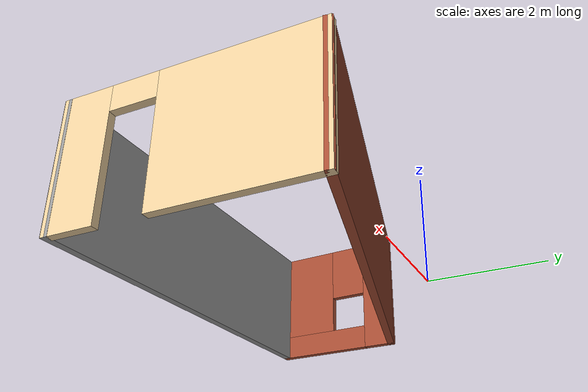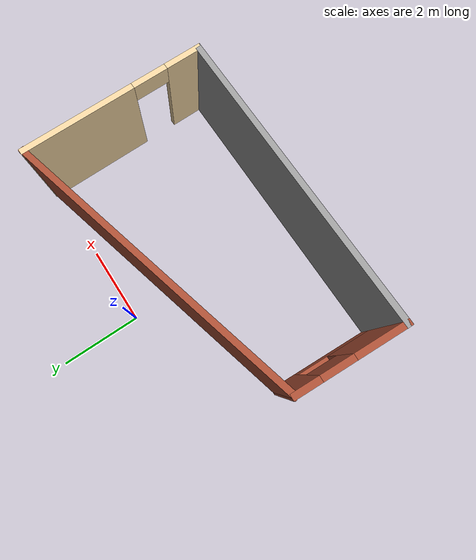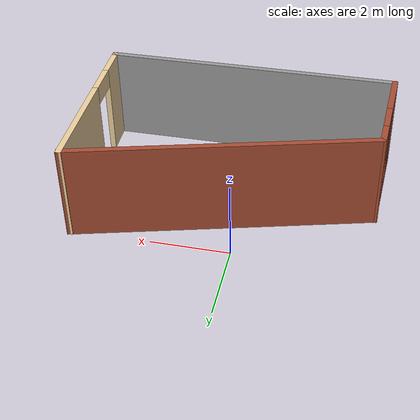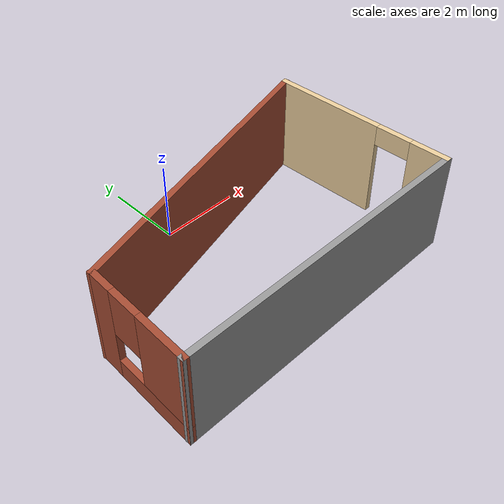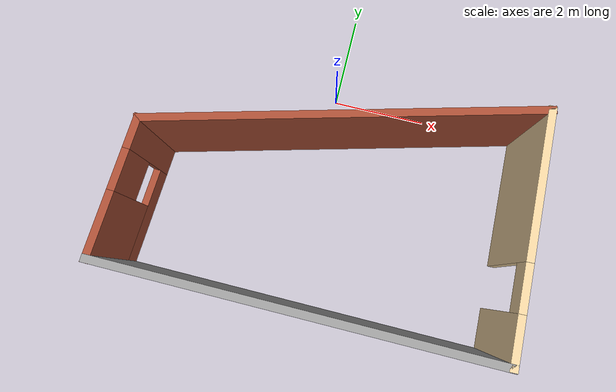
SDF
<?xml version='1.0'?>
<sdf version='1.6'>
  <model name='building'>
    <pose frame=''>0.379417 -2.26262 0 0 -0 0</pose>
    <link name='Wall_10'>
      <pose frame=''>-3.73842 -0.986881 0 0 0 -1.61661</pose>
      <visual name='Wall_10_Visual_0'>
        <pose frame=''>-1.0678 0 1.25 0 -0 0</pose>
        <geometry>
          <box>
            <size>0.677731 0.15 2.5</size>
          </box>
        </geometry>
        <material>
          <script>
            <uri>file://media/materials/scripts/gazebo.material</uri>
            <name>Gazebo/Bricks</name>
          </script>
          <ambient>1 1 1 1</ambient>
        </material>
        <meta>
          <layer>0</layer>
        </meta>
      </visual>
      <collision name='Wall_10_Collision_0'>
        <geometry>
          <box>
            <size>0.677731 0.15 2.5</size>
          </box>
        </geometry>
        <pose frame=''>-1.0678 0 1.25 0 -0 0</pose>
      </collision>
      <visual name='Wall_10_Visual_1'>
        <pose frame=''>0.338866 0 0.25 0 -0 0</pose>
        <geometry>
          <box>
            <size>2.13561 0.15 0.5</size>
          </box>
        </geometry>
        <material>
          <script>
            <uri>file://media/materials/scripts/gazebo.material</uri>
            <name>Gazebo/Bricks</name>
          </script>
          <ambient>1 1 1 1</ambient>
        </material>
        <meta>
          <layer>0</layer>
        </meta>
      </visual>
      <collision name='Wall_10_Collision_1'>
        <geometry>
          <box>
            <size>2.13561 0.15 0.5</size>
          </box>
        </geometry>
        <pose frame=''>0.338866 0 0.25 0 -0 0</pose>
      </collision>
      <visual name='Wall_10_Visual_2'>
        <pose frame=''>0.738866 0 1.5 0 -0 0</pose>
        <geometry>
          <box>
            <size>1.33561 0.15 2</size>
          </box>
        </geometry>
        <material>
          <script>
            <uri>file://media/materials/scripts/gazebo.material</uri>
            <name>Gazebo/Bricks</name>
          </script>
          <ambient>1 1 1 1</ambient>
        </material>
        <meta>
          <layer>0</layer>
        </meta>
      </visual>
      <collision name='Wall_10_Collision_2'>
        <geometry>
          <box>
            <size>1.33561 0.15 2</size>
          </box>
        </geometry>
        <pose frame=''>0.738866 0 1.5 0 -0 0</pose>
      </collision>
      <visual name='Wall_10_Visual_3'>
        <pose frame=''>-0.328938 0 1.9 0 -0 0</pose>
        <geometry>
          <box>
            <size>0.8 0.15 1.2</size>
          </box>
        </geometry>
        <material>
          <script>
            <uri>file://media/materials/scripts/gazebo.material</uri>
            <name>Gazebo/Bricks</name>
          </script>
          <ambient>1 1 1 1</ambient>
        </material>
        <meta>
          <layer>0</layer>
        </meta>
      </visual>
      <collision name='Wall_10_Collision_3'>
        <geometry>
          <box>
            <size>0.8 0.15 1.2</size>
          </box>
        </geometry>
        <pose frame=''>-0.328938 0 1.9 0 -0 0</pose>
      </collision>
    </link>
    <link name='Wall_7'>
      <collision name='Wall_7_Collision'>
        <geometry>
          <box>
            <size>7.75 0.15 2.5</size>
          </box>
        </geometry>
        <pose frame=''>0 0 1.25 0 -0 0</pose>
      </collision>
      <visual name='Wall_7_Visual'>
        <pose frame=''>0 0 1.25 0 -0 0</pose>
        <geometry>
          <box>
            <size>7.75 0.15 2.5</size>
          </box>
        </geometry>
        <material>
          <script>
            <uri>file://media/materials/scripts/gazebo.material</uri>
            <name>Gazebo/Grey</name>
          </script>
          <ambient>1 1 1 1</ambient>
        </material>
        <meta>
          <layer>0</layer>
        </meta>
      </visual>
      <pose frame=''>0.000583 -2.32238 0 0 0 -0.001316</pose>
    </link>
    <link name='Wall_8'>
      <pose frame=''>3.73208 -0.003381 0 0 -0 1.60039</pose>
      <visual name='Wall_8_Visual_0'>
        <pose frame=''>-1.90047 0 1.25 0 -0 0</pose>
        <geometry>
          <box>
            <size>0.978684 0.15 2.5</size>
          </box>
        </geometry>
        <material>
          <script>
            <uri>file://media/materials/scripts/gazebo.material</uri>
            <name>Gazebo/Grey</name>
          </script>
          <ambient>0.921569 0.807843 0.615686 1</ambient>
        </material>
        <meta>
          <layer>0</layer>
        </meta>
      </visual>
      <collision name='Wall_8_Collision_0'>
        <geometry>
          <box>
            <size>0.978684 0.15 2.5</size>
          </box>
        </geometry>
        <pose frame=''>-1.90047 0 1.25 0 -0 0</pose>
      </collision>
      <visual name='Wall_8_Visual_1'>
        <pose frame=''>0.939342 0 1.25 0 -0 0</pose>
        <geometry>
          <box>
            <size>2.90093 0.15 2.5</size>
          </box>
        </geometry>
        <material>
          <script>
            <uri>file://media/materials/scripts/gazebo.material</uri>
            <name>Gazebo/Grey</name>
          </script>
          <ambient>0.921569 0.807843 0.615686 1</ambient>
        </material>
        <meta>
          <layer>0</layer>
        </meta>
      </visual>
      <collision name='Wall_8_Collision_1'>
        <geometry>
          <box>
            <size>2.90093 0.15 2.5</size>
          </box>
        </geometry>
        <pose frame=''>0.939342 0 1.25 0 -0 0</pose>
      </collision>
      <visual name='Wall_8_Visual_2'>
        <pose frame=''>-0.961124 0 2.25 0 -0 0</pose>
        <geometry>
          <box>
            <size>0.9 0.15 0.5</size>
          </box>
        </geometry>
        <material>
          <script>
            <uri>file://media/materials/scripts/gazebo.material</uri>
            <name>Gazebo/Grey</name>
          </script>
          <ambient>0.921569 0.807843 0.615686 1</ambient>
        </material>
        <meta>
          <layer>0</layer>
        </meta>
      </visual>
      <collision name='Wall_8_Collision_2'>
        <geometry>
          <box>
            <size>0.9 0.15 0.5</size>
          </box>
        </geometry>
        <pose frame=''>-0.961124 0 2.25 0 -0 0</pose>
      </collision>
    </link>
    <link name='Wall_9'>
      <collision name='Wall_9_Collision'>
        <geometry>
          <box>
            <size>7.75 0.15 2.5</size>
          </box>
        </geometry>
        <pose frame=''>0 0 1.25 0 -0 0</pose>
      </collision>
      <visual name='Wall_9_Visual'>
        <pose frame=''>0 0 1.25 0 -0 0</pose>
        <geometry>
          <box>
            <size>7.75 0.15 2.5</size>
          </box>
        </geometry>
        <material>
          <script>
            <uri>file://media/materials/scripts/gazebo.material</uri>
            <name>Gazebo/Bricks</name>
          </script>
          <ambient>0.435294 0.796078 0.67451 1</ambient>
        </material>
        <meta>
          <layer>0</layer>
        </meta>
      </visual>
      <pose frame=''>-0.006917 1.32712 0 0 0 -2.8798</pose>
    </link>
    <static>1</static>
  </model>
</sdf>
